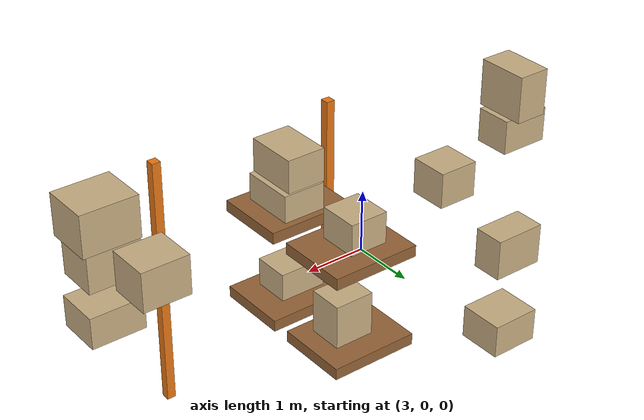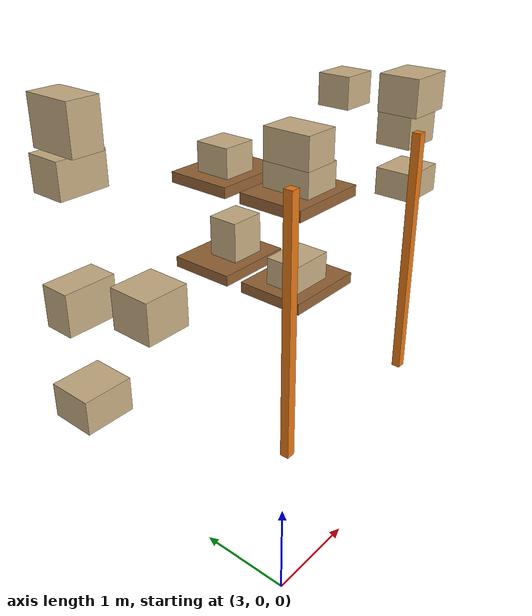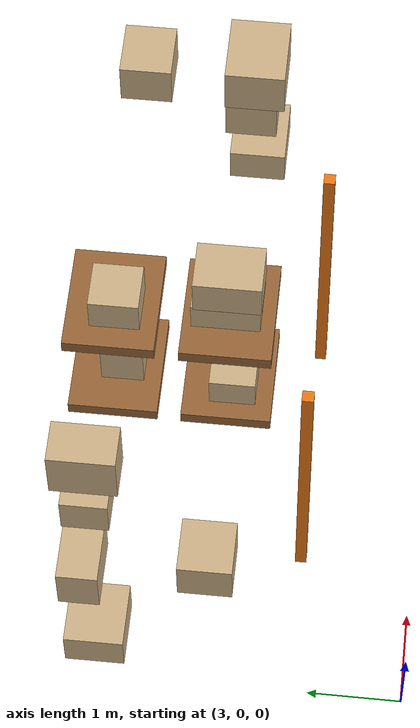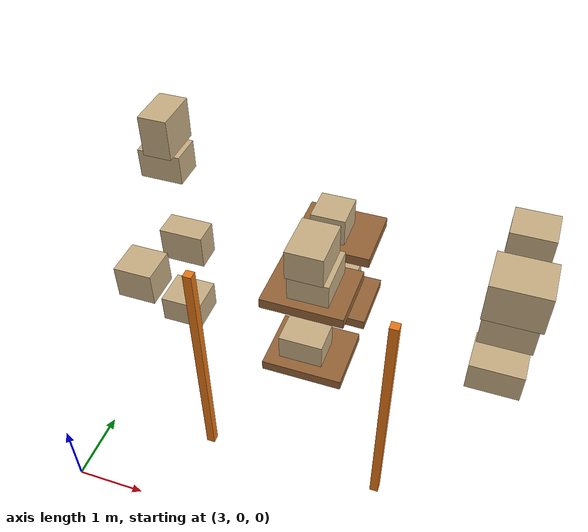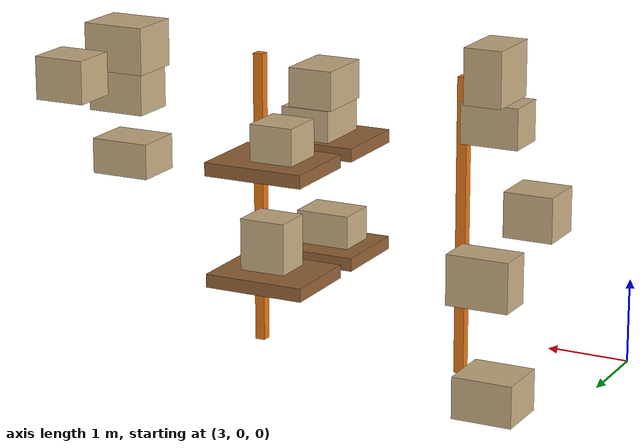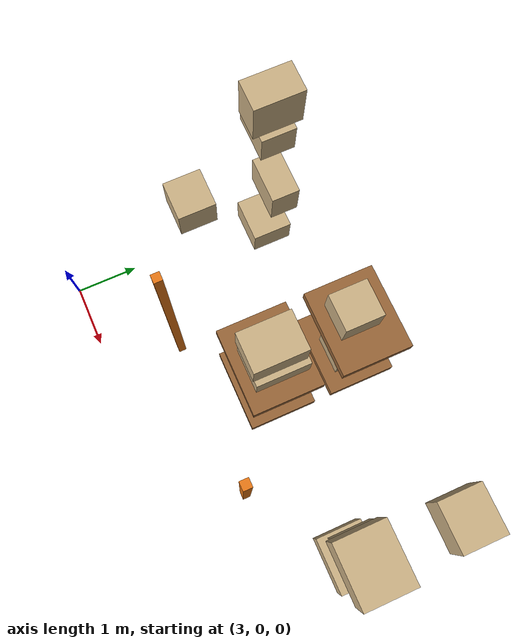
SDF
<sdf version="1.7">
 <world name="default">
  <model name="warehouse_racks">
   <static>1</static>
   <link name="r21_u1_0">
    <pose>4.6 1.2 1.75 0 0 0</pose>
    <collision name="c"><geometry><box><size>0.12 0.12 3.5</size></box></geometry></collision>
    <visual name="v">
     <geometry><box><size>0.12 0.12 3.5</size></box></geometry>
     <material>
      <ambient>0.910 0.471 0.086 1</ambient>
      <diffuse>0.910 0.471 0.086 1</diffuse>
      <specular>0.1 0.1 0.1 1</specular>
     </material>
    </visual>
   </link>
   <link name="r21_u2_0">
    <pose>7.2 1.2 1.75 0 0 0</pose>
    <collision name="c"><geometry><box><size>0.12 0.12 3.5</size></box></geometry></collision>
    <visual name="v">
     <geometry><box><size>0.12 0.12 3.5</size></box></geometry>
     <material>
      <ambient>0.910 0.471 0.086 1</ambient>
      <diffuse>0.910 0.471 0.086 1</diffuse>
      <specular>0.1 0.1 0.1 1</specular>
     </material>
    </visual>
   </link>
  </model>
  <model name="warehouse_loads">
   <static>1</static>
   <link name="r21L0_0_1_c0">
    <pose>3.31241 3.2452 0.633645 0 0 0</pose>
    <collision name="c"><geometry><box><size>0.68335 0.622004 0.46729</size></box></geometry></collision>
    <visual name="v">
     <geometry><box><size>0.68335 0.622004 0.46729</size></box></geometry>
     <material>
      <ambient>0.792 0.690 0.518 1</ambient>
      <diffuse>0.792 0.690 0.518 1</diffuse>
      <specular>0.1 0.1 0.1 1</specular>
     </material>
    </visual>
   </link>
   <link name="r21L1_0_0_c1">
    <pose>3.33185 2.07249 2.32497 0 0 0</pose>
    <collision name="c"><geometry><box><size>0.567843 0.549973 0.509325</size></box></geometry></collision>
    <visual name="v">
     <geometry><box><size>0.567843 0.549973 0.509325</size></box></geometry>
     <material>
      <ambient>0.792 0.690 0.518 1</ambient>
      <diffuse>0.792 0.690 0.518 1</diffuse>
      <specular>0.1 0.1 0.1 1</specular>
     </material>
    </visual>
   </link>
   <link name="r21L1_0_1_c0">
    <pose>3.38116 3.35681 1.92849 0 0 0</pose>
    <collision name="c"><geometry><box><size>0.699056 0.419972 0.556975</size></box></geometry></collision>
    <visual name="v">
     <geometry><box><size>0.699056 0.419972 0.556975</size></box></geometry>
     <material>
      <ambient>0.792 0.690 0.518 1</ambient>
      <diffuse>0.792 0.690 0.518 1</diffuse>
      <specular>0.1 0.1 0.1 1</specular>
     </material>
    </visual>
   </link>
   <link name="r21L1_1_0_p">
    <pose>5.9 2.1 1.575 0 0 0</pose>
    <collision name="c"><geometry><box><size>1.15 0.95 0.15</size></box></geometry></collision>
    <visual name="v">
     <geometry><box><size>1.15 0.95 0.15</size></box></geometry>
     <material>
      <ambient>0.588 0.392 0.216 1</ambient>
      <diffuse>0.588 0.392 0.216 1</diffuse>
      <specular>0.1 0.1 0.1 1</specular>
     </material>
    </visual>
   </link>
   <link name="r21L1_1_0_c0">
    <pose>5.82855 2.04673 1.83769 0 0 0</pose>
    <collision name="c"><geometry><box><size>0.629585 0.487509 0.375378</size></box></geometry></collision>
    <visual name="v">
     <geometry><box><size>0.629585 0.487509 0.375378</size></box></geometry>
     <material>
      <ambient>0.792 0.690 0.518 1</ambient>
      <diffuse>0.792 0.690 0.518 1</diffuse>
      <specular>0.1 0.1 0.1 1</specular>
     </material>
    </visual>
   </link>
   <link name="r21L1_1_1_p">
    <pose>5.9 3.3 1.575 0 0 0</pose>
    <collision name="c"><geometry><box><size>1.15 0.95 0.15</size></box></geometry></collision>
    <visual name="v">
     <geometry><box><size>1.15 0.95 0.15</size></box></geometry>
     <material>
      <ambient>0.588 0.392 0.216 1</ambient>
      <diffuse>0.588 0.392 0.216 1</diffuse>
      <specular>0.1 0.1 0.1 1</specular>
     </material>
    </visual>
   </link>
   <link name="r21L1_1_1_c0">
    <pose>5.95833 3.23358 1.93801 0 0 0</pose>
    <collision name="c"><geometry><box><size>0.521255 0.453435 0.576022</size></box></geometry></collision>
    <visual name="v">
     <geometry><box><size>0.521255 0.453435 0.576022</size></box></geometry>
     <material>
      <ambient>0.792 0.690 0.518 1</ambient>
      <diffuse>0.792 0.690 0.518 1</diffuse>
      <specular>0.1 0.1 0.1 1</specular>
     </material>
    </visual>
   </link>
   <link name="r21L1_2_0_c1">
    <pose>8.44684 2.02787 2.34076 0 0 0</pose>
    <collision name="c"><geometry><box><size>0.708939 0.594272 0.416124</size></box></geometry></collision>
    <visual name="v">
     <geometry><box><size>0.708939 0.594272 0.416124</size></box></geometry>
     <material>
      <ambient>0.792 0.690 0.518 1</ambient>
      <diffuse>0.792 0.690 0.518 1</diffuse>
      <specular>0.1 0.1 0.1 1</specular>
     </material>
    </visual>
   </link>
   <link name="r21L2_0_1_c1">
    <pose>3.3293 3.20411 3.58649 0 0 0</pose>
    <collision name="c"><geometry><box><size>0.636581 0.463182 0.440094</size></box></geometry></collision>
    <visual name="v">
     <geometry><box><size>0.636581 0.463182 0.440094</size></box></geometry>
     <material>
      <ambient>0.792 0.690 0.518 1</ambient>
      <diffuse>0.792 0.690 0.518 1</diffuse>
      <specular>0.1 0.1 0.1 1</specular>
     </material>
    </visual>
   </link>
   <link name="r21L2_0_1_c2">
    <pose>3.36172 3.2188 4.10641 0 0 0</pose>
    <collision name="c"><geometry><box><size>0.416055 0.657789 0.599747</size></box></geometry></collision>
    <visual name="v">
     <geometry><box><size>0.416055 0.657789 0.599747</size></box></geometry>
     <material>
      <ambient>0.792 0.690 0.518 1</ambient>
      <diffuse>0.792 0.690 0.518 1</diffuse>
      <specular>0.1 0.1 0.1 1</specular>
     </material>
    </visual>
   </link>
   <link name="r21L2_1_0_p">
    <pose>5.9 2.1 2.825 0 0 0</pose>
    <collision name="c"><geometry><box><size>1.15 0.95 0.15</size></box></geometry></collision>
    <visual name="v">
     <geometry><box><size>1.15 0.95 0.15</size></box></geometry>
     <material>
      <ambient>0.588 0.392 0.216 1</ambient>
      <diffuse>0.588 0.392 0.216 1</diffuse>
      <specular>0.1 0.1 0.1 1</specular>
     </material>
    </visual>
   </link>
   <link name="r21L2_1_0_c0">
    <pose>5.94364 2.12506 3.07924 0 0 0</pose>
    <collision name="c"><geometry><box><size>0.569636 0.714147 0.358474</size></box></geometry></collision>
    <visual name="v">
     <geometry><box><size>0.569636 0.714147 0.358474</size></box></geometry>
     <material>
      <ambient>0.792 0.690 0.518 1</ambient>
      <diffuse>0.792 0.690 0.518 1</diffuse>
      <specular>0.1 0.1 0.1 1</specular>
     </material>
    </visual>
   </link>
   <link name="r21L2_1_0_c1">
    <pose>5.89491 2.10511 3.47924 0 0 0</pose>
    <collision name="c"><geometry><box><size>0.518512 0.701592 0.44154</size></box></geometry></collision>
    <visual name="v">
     <geometry><box><size>0.518512 0.701592 0.44154</size></box></geometry>
     <material>
      <ambient>0.792 0.690 0.518 1</ambient>
      <diffuse>0.792 0.690 0.518 1</diffuse>
      <specular>0.1 0.1 0.1 1</specular>
     </material>
    </visual>
   </link>
   <link name="r21L2_1_1_p">
    <pose>5.9 3.3 2.825 0 0 0</pose>
    <collision name="c"><geometry><box><size>1.15 0.95 0.15</size></box></geometry></collision>
    <visual name="v">
     <geometry><box><size>1.15 0.95 0.15</size></box></geometry>
     <material>
      <ambient>0.588 0.392 0.216 1</ambient>
      <diffuse>0.588 0.392 0.216 1</diffuse>
      <specular>0.1 0.1 0.1 1</specular>
     </material>
    </visual>
   </link>
   <link name="r21L2_1_1_c0">
    <pose>5.81054 3.25783 3.10645 0 0 0</pose>
    <collision name="c"><geometry><box><size>0.499453 0.519684 0.412893</size></box></geometry></collision>
    <visual name="v">
     <geometry><box><size>0.499453 0.519684 0.412893</size></box></geometry>
     <material>
      <ambient>0.792 0.690 0.518 1</ambient>
      <diffuse>0.792 0.690 0.518 1</diffuse>
      <specular>0.1 0.1 0.1 1</specular>
     </material>
    </visual>
   </link>
   <link name="r21L2_2_0_c0">
    <pose>8.45434 2.10128 3.13797 0 0 0</pose>
    <collision name="c"><geometry><box><size>0.689707 0.541305 0.475937</size></box></geometry></collision>
    <visual name="v">
     <geometry><box><size>0.689707 0.541305 0.475937</size></box></geometry>
     <material>
      <ambient>0.792 0.690 0.518 1</ambient>
      <diffuse>0.792 0.690 0.518 1</diffuse>
      <specular>0.1 0.1 0.1 1</specular>
     </material>
    </visual>
   </link>
   <link name="r21L2_2_0_c1">
    <pose>8.46618 2.06342 3.64993 0 0 0</pose>
    <collision name="c"><geometry><box><size>0.741248 0.629096 0.547988</size></box></geometry></collision>
    <visual name="v">
     <geometry><box><size>0.741248 0.629096 0.547988</size></box></geometry>
     <material>
      <ambient>0.792 0.690 0.518 1</ambient>
      <diffuse>0.792 0.690 0.518 1</diffuse>
      <specular>0.1 0.1 0.1 1</specular>
     </material>
    </visual>
   </link>
   <link name="r21L2_2_1_c1">
    <pose>8.4797 3.2217 3.51865 0 0 0</pose>
    <collision name="c"><geometry><box><size>0.594003 0.54211 0.493511</size></box></geometry></collision>
    <visual name="v">
     <geometry><box><size>0.594003 0.54211 0.493511</size></box></geometry>
     <material>
      <ambient>0.792 0.690 0.518 1</ambient>
      <diffuse>0.792 0.690 0.518 1</diffuse>
      <specular>0.1 0.1 0.1 1</specular>
     </material>
    </visual>
   </link>
  </model>
 </world>
</sdf>
